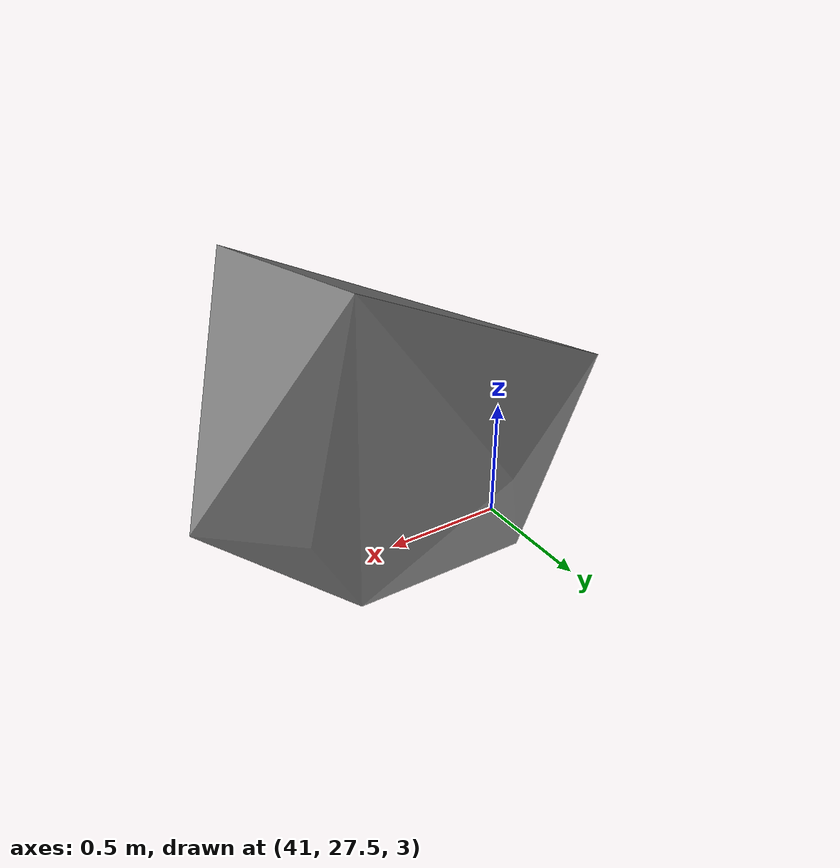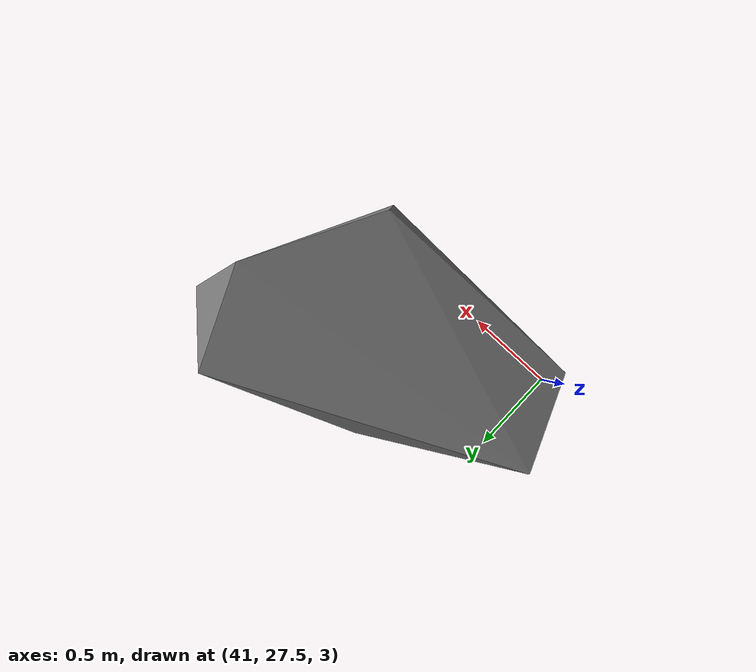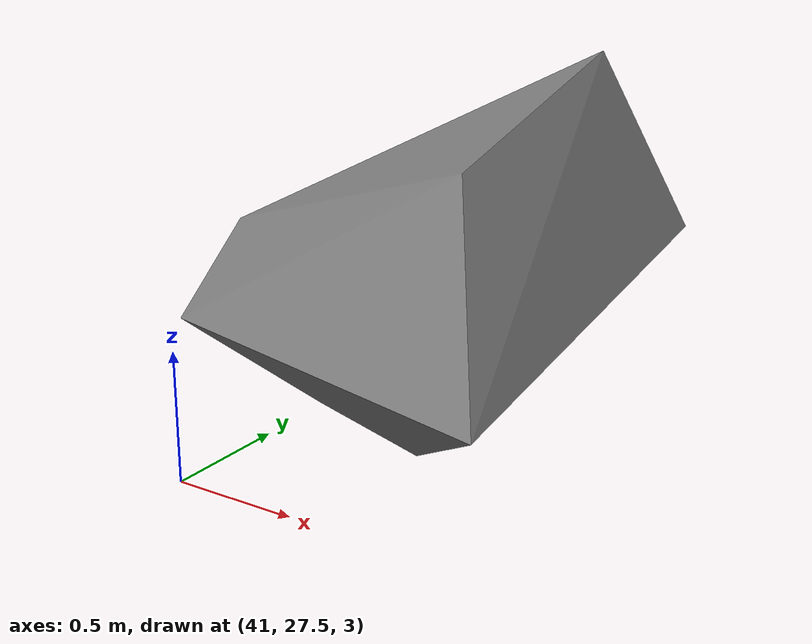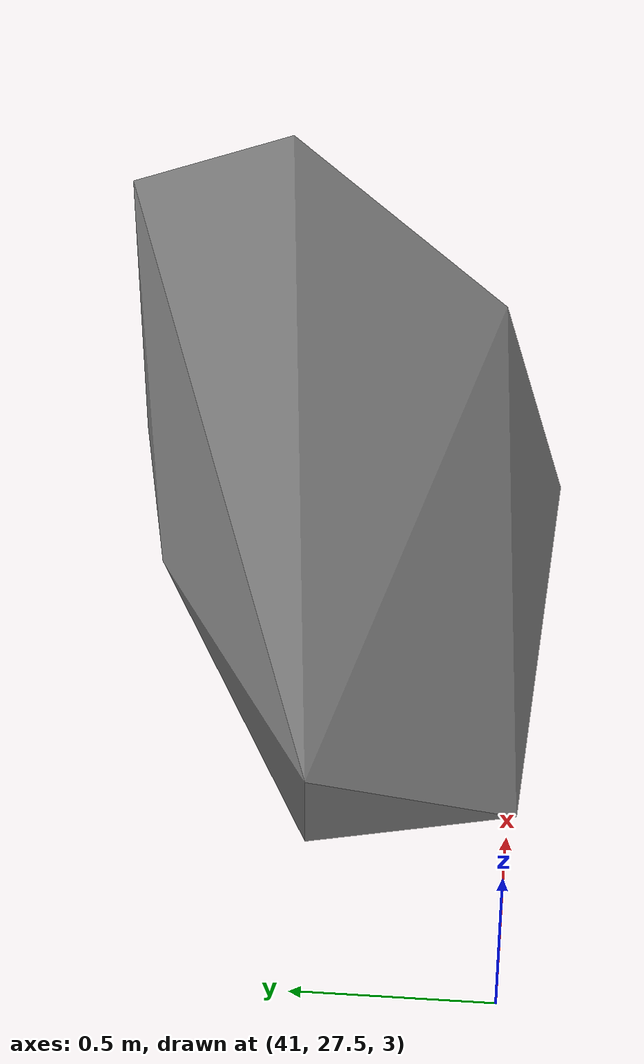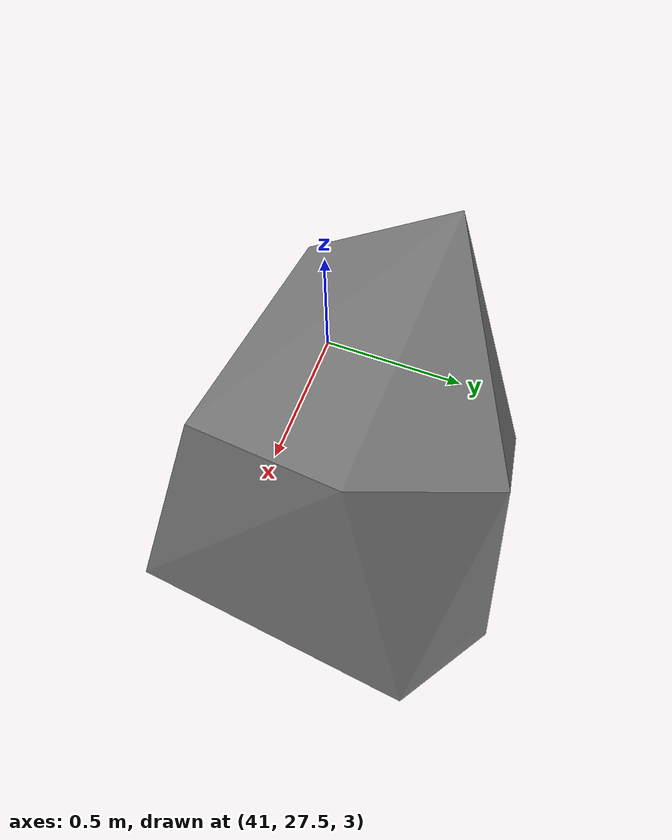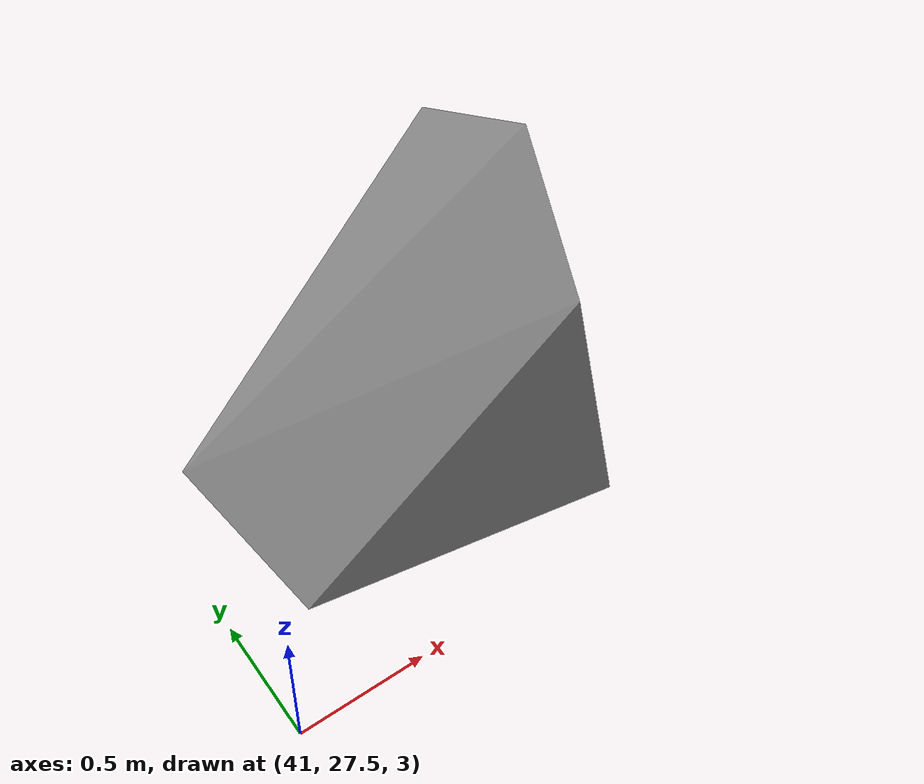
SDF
<sdf version="1.8">
 <model name="blue_mountains">
  <static>true</static>
  <link name="forest_24_22">
   <collision name="tree_10_trunk">
    <pose>41.71402 28.39759 1.934022 0 0 2.0474</pose>
    <geometry><cylinder><radius>0.06349681</radius><length>3.035994</length></cylinder></geometry>
   </collision>
   <collision name="plant_10_crown_0">
    <pose>41.72567 28.37502 0.4160252 0 0 2.0474</pose>
    <geometry>
     <mesh>
      <uri>model://blue_mountains/meshes/canopy_0_0.dae</uri>
      <scale>0.2539872 0.2539872 0.2239028</scale>
     </mesh>
    </geometry>
   </collision>
   <collision name="plant_10_crown_1">
    <pose>41.72567 28.37502 0.4160252 0 0 2.0474</pose>
    <geometry>
     <mesh>
      <uri>model://blue_mountains/meshes/canopy_0_1.dae</uri>
      <scale>0.2539872 0.2539872 0.2239028</scale>
     </mesh>
    </geometry>
   </collision>
   <collision name="tree_40_trunk">
    <pose>43.47974 24.03572 1.803009 0 0 0.729878</pose>
    <geometry><cylinder><radius>0.06520865</radius><length>3.315933</length></cylinder></geometry>
   </collision>
   <collision name="plant_40_crown_0">
    <pose>43.4603 24.01832 0.1450429 0 0 0.729878</pose>
    <geometry>
     <mesh>
      <uri>model://blue_mountains/meshes/canopy_0_0.dae</uri>
      <scale>0.2608346 0.2608346 0.2445482</scale>
     </mesh>
    </geometry>
   </collision>
   <collision name="plant_40_crown_1">
    <pose>43.4603 24.01832 0.1450429 0 0 0.729878</pose>
    <geometry>
     <mesh>
      <uri>model://blue_mountains/meshes/canopy_0_1.dae</uri>
      <scale>0.2608346 0.2608346 0.2445482</scale>
     </mesh>
    </geometry>
   </collision>
   <collision name="tree_58_trunk">
    <pose>46.00673 26.46324 1.071841 0 0 -2.90928</pose>
    <geometry><cylinder><radius>0.04628915</radius><length>2.65044</length></cylinder></geometry>
   </collision>
   <collision name="plant_58_crown_0">
    <pose>46.02475 26.4675 -0.2533789 0 0 -2.90928</pose>
    <geometry>
     <mesh>
      <uri>model://blue_mountains/meshes/canopy_2_0.dae</uri>
      <scale>0.1851566 0.1851566 0.1950071</scale>
     </mesh>
    </geometry>
   </collision>
   <collision name="plant_58_crown_1">
    <pose>46.02475 26.4675 -0.2533789 0 0 -2.90928</pose>
    <geometry>
     <mesh>
      <uri>model://blue_mountains/meshes/canopy_2_1.dae</uri>
      <scale>0.1851566 0.1851566 0.1950071</scale>
     </mesh>
    </geometry>
   </collision>
   <collision name="tree_64_trunk">
    <pose>48.51492 26.68099 0.3696645 0 0 -2.096948</pose>
    <geometry><cylinder><radius>0.04230284</radius><length>2.157059</length></cylinder></geometry>
   </collision>
   <collision name="plant_64_crown_0">
    <pose>48.52342 26.69563 -0.7088652 0 0 -2.096948</pose>
    <geometry>
     <mesh>
      <uri>model://blue_mountains/meshes/canopy_6_0.dae</uri>
      <scale>0.1692114 0.1692114 0.1590015</scale>
     </mesh>
    </geometry>
   </collision>
   <collision name="plant_64_crown_1">
    <pose>48.52342 26.69563 -0.7088652 0 0 -2.096948</pose>
    <geometry>
     <mesh>
      <uri>model://blue_mountains/meshes/canopy_6_1.dae</uri>
      <scale>0.1692114 0.1692114 0.1590015</scale>
     </mesh>
    </geometry>
   </collision>
   <collision name="tree_68_trunk">
    <pose>46.199 21.51286 1.126695 0 0 2.367833</pose>
    <geometry><cylinder><radius>0.05668145</radius><length>2.913671</length></cylinder></geometry>
   </collision>
   <collision name="plant_68_crown_0">
    <pose>46.21522 21.49702 -0.3301408 0 0 2.367833</pose>
    <geometry>
     <mesh>
      <uri>model://blue_mountains/meshes/canopy_3_0.dae</uri>
      <scale>0.2267258 0.2267258 0.2166179</scale>
     </mesh>
    </geometry>
   </collision>
   <collision name="plant_68_crown_1">
    <pose>46.21522 21.49702 -0.3301408 0 0 2.367833</pose>
    <geometry>
     <mesh>
      <uri>model://blue_mountains/meshes/canopy_3_1.dae</uri>
      <scale>0.2267258 0.2267258 0.2166179</scale>
     </mesh>
    </geometry>
   </collision>
   <collision name="tree_77_trunk">
    <pose>42.67219 29.16437 1.681649 0 0 -1.108291</pose>
    <geometry><cylinder><radius>0.0555219</radius><length>2.914814</length></cylinder></geometry>
   </collision>
   <collision name="plant_77_crown_0">
    <pose>42.66228 29.18425 0.2242417 0 0 -1.108291</pose>
    <geometry>
     <mesh>
      <uri>model://blue_mountains/meshes/canopy_1_0.dae</uri>
      <scale>0.2220876 0.2220876 0.2152905</scale>
     </mesh>
    </geometry>
   </collision>
   <collision name="plant_77_crown_1">
    <pose>42.66228 29.18425 0.2242417 0 0 -1.108291</pose>
    <geometry>
     <mesh>
      <uri>model://blue_mountains/meshes/canopy_1_1.dae</uri>
      <scale>0.2220876 0.2220876 0.2152905</scale>
     </mesh>
    </geometry>
   </collision>
   <collision name="tree_81_trunk">
    <pose>46.34816 25.23552 1.150252 0 0 -0.2604488</pose>
    <geometry><cylinder><radius>0.05970743</radius><length>2.905011</length></cylinder></geometry>
   </collision>
   <collision name="plant_81_crown_0">
    <pose>46.32508 25.24167 -0.3022537 0 0 -0.2604488</pose>
    <geometry>
     <mesh>
      <uri>model://blue_mountains/meshes/canopy_2_0.dae</uri>
      <scale>0.2388297 0.2388297 0.2137373</scale>
     </mesh>
    </geometry>
   </collision>
   <collision name="plant_81_crown_1">
    <pose>46.32508 25.24167 -0.3022537 0 0 -0.2604488</pose>
    <geometry>
     <mesh>
      <uri>model://blue_mountains/meshes/canopy_2_1.dae</uri>
      <scale>0.2388297 0.2388297 0.2137373</scale>
     </mesh>
    </geometry>
   </collision>
   <collision name="tree_85_trunk">
    <pose>45.13256 22.14046 1.501053 0 0 1.126646</pose>
    <geometry><cylinder><radius>0.05341748</radius><length>3.347397</length></cylinder></geometry>
   </collision>
   <collision name="plant_85_crown_0">
    <pose>45.12338 22.12117 -0.1726456 0 0 1.126646</pose>
    <geometry>
     <mesh>
      <uri>model://blue_mountains/meshes/canopy_6_0.dae</uri>
      <scale>0.2136699 0.2136699 0.2467439</scale>
     </mesh>
    </geometry>
   </collision>
   <collision name="plant_85_crown_1">
    <pose>45.12338 22.12117 -0.1726456 0 0 1.126646</pose>
    <geometry>
     <mesh>
      <uri>model://blue_mountains/meshes/canopy_6_1.dae</uri>
      <scale>0.2136699 0.2136699 0.2467439</scale>
     </mesh>
    </geometry>
   </collision>
   <collision name="tree_97_trunk">
    <pose>41.5011 20.33506 1.967151 0 0 0.1857018</pose>
    <geometry><cylinder><radius>0.05774887</radius><length>3.336165</length></cylinder></geometry>
   </collision>
   <collision name="plant_97_crown_0">
    <pose>41.4784 20.33079 0.2990682 0 0 0.1857018</pose>
    <geometry>
     <mesh>
      <uri>model://blue_mountains/meshes/canopy_8_0.dae</uri>
      <scale>0.2309955 0.2309955 0.2482406</scale>
     </mesh>
    </geometry>
   </collision>
   <collision name="plant_97_crown_1">
    <pose>41.4784 20.33079 0.2990682 0 0 0.1857018</pose>
    <geometry>
     <mesh>
      <uri>model://blue_mountains/meshes/canopy_8_1.dae</uri>
      <scale>0.2309955 0.2309955 0.2482406</scale>
     </mesh>
    </geometry>
   </collision>
   <collision name="tree_177_trunk">
    <pose>48.01332 21.29027 0.6846826 0 0 1.17675</pose>
    <geometry><cylinder><radius>0.04236753</radius><length>2.469732</length></cylinder></geometry>
   </collision>
   <collision name="plant_177_crown_0">
    <pose>48.00681 21.27462 -0.5501835 0 0 1.17675</pose>
    <geometry>
     <mesh>
      <uri>model://blue_mountains/meshes/canopy_0_0.dae</uri>
      <scale>0.1694701 0.1694701 0.1821413</scale>
     </mesh>
    </geometry>
   </collision>
   <collision name="plant_177_crown_1">
    <pose>48.00681 21.27462 -0.5501835 0 0 1.17675</pose>
    <geometry>
     <mesh>
      <uri>model://blue_mountains/meshes/canopy_0_1.dae</uri>
      <scale>0.1694701 0.1694701 0.1821413</scale>
     </mesh>
    </geometry>
   </collision>
   <collision name="tree_213_trunk">
    <pose>48.43406 23.69735 0.4812986 0 0 0.3521869</pose>
    <geometry><cylinder><radius>0.03874907</radius><length>2.212726</length></cylinder></geometry>
   </collision>
   <collision name="plant_213_crown_0">
    <pose>48.41951 23.69201 -0.6250646 0 0 0.3521869</pose>
    <geometry>
     <mesh>
      <uri>model://blue_mountains/meshes/canopy_2_0.dae</uri>
      <scale>0.1549963 0.1549963 0.1628022</scale>
     </mesh>
    </geometry>
   </collision>
   <collision name="plant_213_crown_1">
    <pose>48.41951 23.69201 -0.6250646 0 0 0.3521869</pose>
    <geometry>
     <mesh>
      <uri>model://blue_mountains/meshes/canopy_2_1.dae</uri>
      <scale>0.1549963 0.1549963 0.1628022</scale>
     </mesh>
    </geometry>
   </collision>
   <collision name="tree_224_trunk">
    <pose>44.85655 29.83728 1.057076 0 0 0.9527194</pose>
    <geometry><cylinder><radius>0.05059644</radius><length>2.513682</length></cylinder></geometry>
   </collision>
   <collision name="plant_224_crown_0">
    <pose>44.84483 29.82078 -0.1997654 0 0 0.9527194</pose>
    <geometry>
     <mesh>
      <uri>model://blue_mountains/meshes/canopy_1_0.dae</uri>
      <scale>0.2023858 0.2023858 0.1856626</scale>
     </mesh>
    </geometry>
   </collision>
   <collision name="plant_224_crown_1">
    <pose>44.84483 29.82078 -0.1997654 0 0 0.9527194</pose>
    <geometry>
     <mesh>
      <uri>model://blue_mountains/meshes/canopy_1_1.dae</uri>
      <scale>0.2023858 0.2023858 0.1856626</scale>
     </mesh>
    </geometry>
   </collision>
   <collision name="tree_267_trunk">
    <pose>43.16704 22.28795 1.652131 0 0 -2.147309</pose>
    <geometry><cylinder><radius>0.0559492</radius><length>3.061646</length></cylinder></geometry>
   </collision>
   <collision name="plant_267_crown_0">
    <pose>43.17924 22.30671 0.1213083 0 0 -2.147309</pose>
    <geometry>
     <mesh>
      <uri>model://blue_mountains/meshes/canopy_3_0.dae</uri>
      <scale>0.2237968 0.2237968 0.2276192</scale>
     </mesh>
    </geometry>
   </collision>
   <collision name="plant_267_crown_1">
    <pose>43.17924 22.30671 0.1213083 0 0 -2.147309</pose>
    <geometry>
     <mesh>
      <uri>model://blue_mountains/meshes/canopy_3_1.dae</uri>
      <scale>0.2237968 0.2237968 0.2276192</scale>
     </mesh>
    </geometry>
   </collision>
   <collision name="tree_284_trunk">
    <pose>46.61629 29.65842 0.9331094 0 0 -0.7980527</pose>
    <geometry><cylinder><radius>0.04640207</radius><length>2.896274</length></cylinder></geometry>
   </collision>
   <collision name="plant_284_crown_0">
    <pose>46.60333 29.67171 -0.5150275 0 0 -0.7980527</pose>
    <geometry>
     <mesh>
      <uri>model://blue_mountains/meshes/canopy_8_0.dae</uri>
      <scale>0.1856083 0.1856083 0.2155087</scale>
     </mesh>
    </geometry>
   </collision>
   <collision name="plant_284_crown_1">
    <pose>46.60333 29.67171 -0.5150275 0 0 -0.7980527</pose>
    <geometry>
     <mesh>
      <uri>model://blue_mountains/meshes/canopy_8_1.dae</uri>
      <scale>0.1856083 0.1856083 0.2155087</scale>
     </mesh>
    </geometry>
   </collision>
   <collision name="tree_298_trunk">
    <pose>42.87427 23.38526 1.727927 0 0 -1.936401</pose>
    <geometry><cylinder><radius>0.06364276</radius><length>3.037038</length></cylinder></geometry>
   </collision>
   <collision name="plant_298_crown_0">
    <pose>42.88337 23.40903 0.2094081 0 0 -1.936401</pose>
    <geometry>
     <mesh><uri>model://blue_mountains/meshes/canopy_5_0.dae</uri><scale>0.254571 0.254571 0.2282776</scale></mesh>
    </geometry>
   </collision>
   <collision name="plant_298_crown_1">
    <pose>42.88337 23.40903 0.2094081 0 0 -1.936401</pose>
    <geometry>
     <mesh><uri>model://blue_mountains/meshes/canopy_5_1.dae</uri><scale>0.254571 0.254571 0.2282776</scale></mesh>
    </geometry>
   </collision>
   <collision name="tree_308_trunk">
    <pose>42.44656 26.70446 1.41376 0 0 -0.6684373</pose>
    <geometry><cylinder><radius>0.03957343</radius><length>2.107855</length></cylinder></geometry>
   </collision>
   <collision name="plant_308_crown_0">
    <pose>42.43414 26.71427 0.3598323 0 0 -0.6684373</pose>
    <geometry>
     <mesh>
      <uri>model://blue_mountains/meshes/canopy_8_0.dae</uri>
      <scale>0.1582937 0.1582937 0.1568433</scale>
     </mesh>
    </geometry>
   </collision>
   <collision name="plant_308_crown_1">
    <pose>42.43414 26.71427 0.3598323 0 0 -0.6684373</pose>
    <geometry>
     <mesh>
      <uri>model://blue_mountains/meshes/canopy_8_1.dae</uri>
      <scale>0.1582937 0.1582937 0.1568433</scale>
     </mesh>
    </geometry>
   </collision>
   <collision name="tree_313_trunk">
    <pose>44.38466 22.84876 1.647673 0 0 0.9987592</pose>
    <geometry><cylinder><radius>0.06043049</radius><length>3.379262</length></cylinder></geometry>
   </collision>
   <collision name="plant_313_crown_0">
    <pose>44.37157 22.82843 -0.04195809 0 0 0.9987592</pose>
    <geometry>
     <mesh>
      <uri>model://blue_mountains/meshes/canopy_7_0.dae</uri>
      <scale>0.2417219 0.2417219 0.2540744</scale>
     </mesh>
    </geometry>
   </collision>
   <collision name="plant_313_crown_1">
    <pose>44.37157 22.82843 -0.04195809 0 0 0.9987592</pose>
    <geometry>
     <mesh>
      <uri>model://blue_mountains/meshes/canopy_7_1.dae</uri>
      <scale>0.2417219 0.2417219 0.2540744</scale>
     </mesh>
    </geometry>
   </collision>
   <collision name="tree_335_trunk">
    <pose>45.46765 26.1827 1.432108 0 0 -2.810467</pose>
    <geometry><cylinder><radius>0.06636001</radius><length>3.179679</length></cylinder></geometry>
   </collision>
   <collision name="plant_335_crown_0">
    <pose>45.49275 26.19133 -0.1577318 0 0 -2.810467</pose>
    <geometry>
     <mesh>
      <uri>model://blue_mountains/meshes/canopy_3_0.dae</uri>
      <scale>0.2654401 0.2654401 0.2363944</scale>
     </mesh>
    </geometry>
   </collision>
   <collision name="plant_335_crown_1">
    <pose>45.49275 26.19133 -0.1577318 0 0 -2.810467</pose>
    <geometry>
     <mesh>
      <uri>model://blue_mountains/meshes/canopy_3_1.dae</uri>
      <scale>0.2654401 0.2654401 0.2363944</scale>
     </mesh>
    </geometry>
   </collision>
   <collision name="tree_344_trunk">
    <pose>42.58124 24.52483 2.043772 0 0 -0.8819125</pose>
    <geometry><cylinder><radius>0.06318867</radius><length>3.486778</length></cylinder></geometry>
   </collision>
   <collision name="plant_344_crown_0">
    <pose>42.56517 24.54434 0.3003824 0 0 -0.8819125</pose>
    <geometry>
     <mesh>
      <uri>model://blue_mountains/meshes/canopy_3_0.dae</uri>
      <scale>0.2527547 0.2527547 0.2592258</scale>
     </mesh>
    </geometry>
   </collision>
   <collision name="plant_344_crown_1">
    <pose>42.56517 24.54434 0.3003824 0 0 -0.8819125</pose>
    <geometry>
     <mesh>
      <uri>model://blue_mountains/meshes/canopy_3_1.dae</uri>
      <scale>0.2527547 0.2527547 0.2592258</scale>
     </mesh>
    </geometry>
   </collision>
   <collision name="tree_349_trunk">
    <pose>41.24196 28.34545 2.393974 0 0 0.6925129</pose>
    <geometry><cylinder><radius>0.06091411</radius><length>3.802679</length></cylinder></geometry>
   </collision>
   <collision name="plant_349_crown_0">
    <pose>41.22321 28.3299 0.4926341 0 0 0.6925129</pose>
    <geometry>
     <mesh>
      <uri>model://blue_mountains/meshes/canopy_5_0.dae</uri>
      <scale>0.2436564 0.2436564 0.2858267</scale>
     </mesh>
    </geometry>
   </collision>
   <collision name="plant_349_crown_1">
    <pose>41.22321 28.3299 0.4926341 0 0 0.6925129</pose>
    <geometry>
     <mesh>
      <uri>model://blue_mountains/meshes/canopy_5_1.dae</uri>
      <scale>0.2436564 0.2436564 0.2858267</scale>
     </mesh>
    </geometry>
   </collision>
   <collision name="tree_356_trunk">
    <pose>41.35026 25.2844 2.412443 0 0 1.778009</pose>
    <geometry><cylinder><radius>0.06037949</radius><length>3.816249</length></cylinder></geometry>
   </collision>
   <collision name="plant_356_crown_0">
    <pose>41.35522 25.26076 0.504319 0 0 1.778009</pose>
    <geometry>
     <mesh><uri>model://blue_mountains/meshes/canopy_3_0.dae</uri><scale>0.241518 0.241518 0.2837203</scale></mesh>
    </geometry>
   </collision>
   <collision name="plant_356_crown_1">
    <pose>41.35522 25.26076 0.504319 0 0 1.778009</pose>
    <geometry>
     <mesh><uri>model://blue_mountains/meshes/canopy_3_1.dae</uri><scale>0.241518 0.241518 0.2837203</scale></mesh>
    </geometry>
   </collision>
   <collision name="tree_358_trunk">
    <pose>44.56249 25.6201 1.757736 0 0 1.802105</pose>
    <geometry><cylinder><radius>0.05614874</radius><length>3.515188</length></cylinder></geometry>
   </collision>
   <collision name="plant_358_crown_0">
    <pose>44.56763 25.59824 0.0001416206 0 0 1.802105</pose>
    <geometry>
     <mesh>
      <uri>model://blue_mountains/meshes/canopy_0_0.dae</uri>
      <scale>0.2245949 0.2245949 0.2592431</scale>
     </mesh>
    </geometry>
   </collision>
   <collision name="plant_358_crown_1">
    <pose>44.56763 25.59824 0.0001416206 0 0 1.802105</pose>
    <geometry>
     <mesh>
      <uri>model://blue_mountains/meshes/canopy_0_1.dae</uri>
      <scale>0.2245949 0.2245949 0.2592431</scale>
     </mesh>
    </geometry>
   </collision>
   <collision name="tree_368_trunk">
    <pose>47.98075 22.79935 0.750393 0 0 -1.405263</pose>
    <geometry><cylinder><radius>0.04388831</radius><length>2.61391</length></cylinder></geometry>
   </collision>
   <collision name="plant_368_crown_0">
    <pose>47.97786 22.81667 -0.5565619 0 0 -1.405263</pose>
    <geometry>
     <mesh>
      <uri>model://blue_mountains/meshes/canopy_6_0.dae</uri>
      <scale>0.1755532 0.1755532 0.192677</scale>
     </mesh>
    </geometry>
   </collision>
   <collision name="plant_368_crown_1">
    <pose>47.97786 22.81667 -0.5565619 0 0 -1.405263</pose>
    <geometry>
     <mesh>
      <uri>model://blue_mountains/meshes/canopy_6_1.dae</uri>
      <scale>0.1755532 0.1755532 0.192677</scale>
     </mesh>
    </geometry>
   </collision>
   <collision name="tree_382_trunk">
    <pose>43.56398 21.69226 1.489928 0 0 2.459426</pose>
    <geometry><cylinder><radius>0.06171521</radius><length>2.901051</length></cylinder></geometry>
   </collision>
   <collision name="plant_382_crown_0">
    <pose>43.58314 21.6767 0.03940201 0 0 2.459426</pose>
    <geometry>
     <mesh>
      <uri>model://blue_mountains/meshes/canopy_2_0.dae</uri>
      <scale>0.2468608 0.2468608 0.2134459</scale>
     </mesh>
    </geometry>
   </collision>
   <collision name="plant_382_crown_1">
    <pose>43.58314 21.6767 0.03940201 0 0 2.459426</pose>
    <geometry>
     <mesh>
      <uri>model://blue_mountains/meshes/canopy_2_1.dae</uri>
      <scale>0.2468608 0.2468608 0.2134459</scale>
     </mesh>
    </geometry>
   </collision>
   <collision name="tree_401_trunk">
    <pose>49.47117 26.30974 0.9296583 0 0 -1.281106</pose>
    <geometry><cylinder><radius>0.07052105</radius><length>3.592568</length></cylinder></geometry>
   </collision>
   <collision name="plant_401_crown_0">
    <pose>49.46311 26.33678 -0.8666255 0 0 -1.281106</pose>
    <geometry>
     <mesh>
      <uri>model://blue_mountains/meshes/canopy_3_0.dae</uri>
      <scale>0.2820842 0.2820842 0.2670907</scale>
     </mesh>
    </geometry>
   </collision>
   <collision name="plant_401_crown_1">
    <pose>49.46311 26.33678 -0.8666255 0 0 -1.281106</pose>
    <geometry>
     <mesh>
      <uri>model://blue_mountains/meshes/canopy_3_1.dae</uri>
      <scale>0.2820842 0.2820842 0.2670907</scale>
     </mesh>
    </geometry>
   </collision>
   <collision name="tree_409_trunk">
    <pose>46.09028 23.76682 0.9894581 0 0 -0.584155</pose>
    <geometry><cylinder><radius>0.05345095</radius><length>2.535338</length></cylinder></geometry>
   </collision>
   <collision name="plant_409_crown_0">
    <pose>46.07245 23.77861 -0.2782111 0 0 -0.584155</pose>
    <geometry>
     <mesh>
      <uri>model://blue_mountains/meshes/canopy_1_0.dae</uri>
      <scale>0.2138038 0.2138038 0.1872622</scale>
     </mesh>
    </geometry>
   </collision>
   <collision name="plant_409_crown_1">
    <pose>46.07245 23.77861 -0.2782111 0 0 -0.584155</pose>
    <geometry>
     <mesh>
      <uri>model://blue_mountains/meshes/canopy_1_1.dae</uri>
      <scale>0.2138038 0.2138038 0.1872622</scale>
     </mesh>
    </geometry>
   </collision>
   <collision name="tree_446_trunk">
    <pose>49.8298 22.28229 1.050611 0 0 2.752466</pose>
    <geometry><cylinder><radius>0.06466427</radius><length>3.675637</length></cylinder></geometry>
   </collision>
   <collision name="plant_446_crown_0">
    <pose>49.85373 22.27248 -0.7872076 0 0 2.752466</pose>
    <geometry>
     <mesh>
      <uri>model://blue_mountains/meshes/canopy_5_0.dae</uri>
      <scale>0.2586571 0.2586571 0.2762776</scale>
     </mesh>
    </geometry>
   </collision>
   <collision name="plant_446_crown_1">
    <pose>49.85373 22.27248 -0.7872076 0 0 2.752466</pose>
    <geometry>
     <mesh>
      <uri>model://blue_mountains/meshes/canopy_5_1.dae</uri>
      <scale>0.2586571 0.2586571 0.2762776</scale>
     </mesh>
    </geometry>
   </collision>
   <collision name="tree_457_trunk">
    <pose>44.07819 20.4656 1.580683 0 0 -2.510918</pose>
    <geometry><cylinder><radius>0.06227819</radius><length>3.291143</length></cylinder></geometry>
   </collision>
   <collision name="plant_457_crown_0">
    <pose>44.0983 20.48029 -0.06488872 0 0 -2.510918</pose>
    <geometry>
     <mesh>
      <uri>model://blue_mountains/meshes/canopy_7_0.dae</uri>
      <scale>0.2491128 0.2491128 0.247449</scale>
     </mesh>
    </geometry>
   </collision>
   <collision name="plant_457_crown_1">
    <pose>44.0983 20.48029 -0.06488872 0 0 -2.510918</pose>
    <geometry>
     <mesh>
      <uri>model://blue_mountains/meshes/canopy_7_1.dae</uri>
      <scale>0.2491128 0.2491128 0.247449</scale>
     </mesh>
    </geometry>
   </collision>
   <visual name="forest_visual">
    <geometry><mesh><uri>model://blue_mountains/meshes/forest_24_22.dae</uri></mesh></geometry>
    <cast_shadows>false</cast_shadows>
   </visual>
  </link>
 </model>
</sdf>
